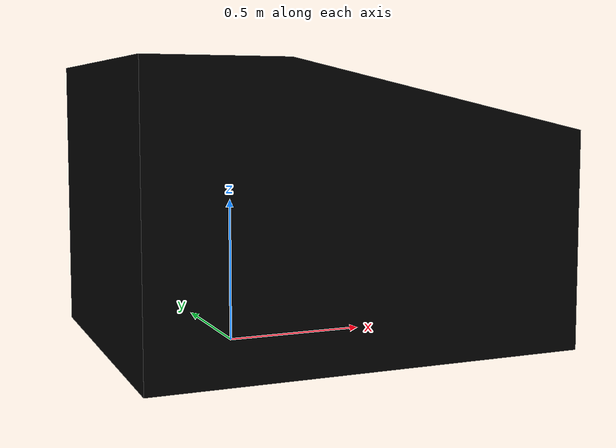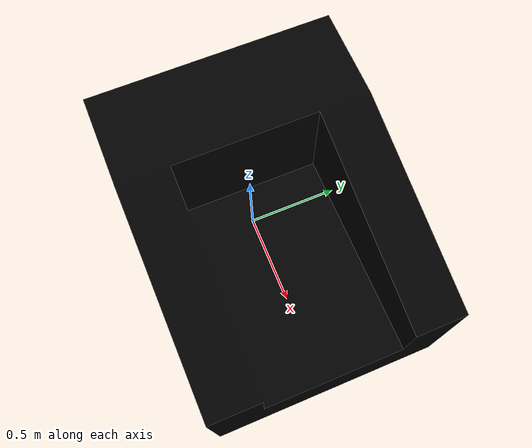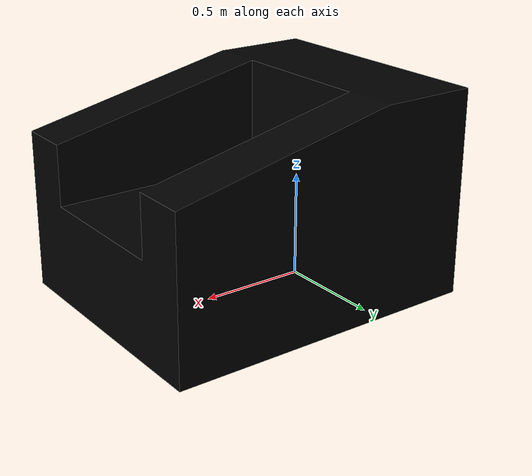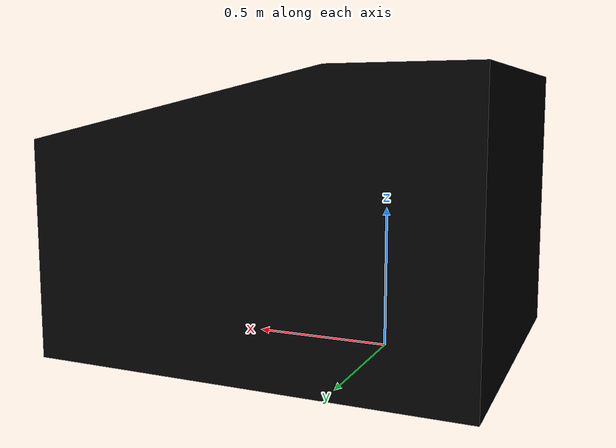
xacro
<?xml version="1.0"?>

<robot xmlns:xacro="http://ros.org/wiki/xacro">

  <material name="white">
    <color rgba="1 1 1 1"/>
  </material>

  <material name="black">
    <color rgba="0 0 0 1"/>
  </material>

  <link name="world_dummy_link"></link>

  <joint name="world_dummy_joint" type="fixed">
    <parent link="world_dummy_link" />
    <child link = "quanjo_body" />
    <origin xyz="0.0 0.0 0.0" rpy="0.0 0.0 0.0" />
  </joint>

  <link name="quanjo_body">
    <visual>
      <geometry>
 	<mesh filename="package://seneka_ugv_description/meshes/Mockup_simplified.dae" scale="0.001 0.001 0.001"/>
      </geometry>
      <geometry>
      	<box size="0.5 0.5 2.0"/>
      </geometry>
      <origin rpy="0 0 1.57" xyz="0 0 0"/>
      <material name="black"/>
    </visual>

    <collision>
      <geometry>
	<mesh filename="package://seneka_ugv_description/meshes/Mockup_simplified.dae" scale="0.001 0.001 0.001"/>
      </geometry>
      <origin rpy="0 0 1.57" xyz="0 0 0"/>
    </collision>

    <inertial>
      <mass value="60" />
      <inertia ixx="1.0" ixy="0.0" ixz="0.0" iyy="1.0" iyz="0.0" izz="1.0"/>
    </inertial>
  </link>

</robot>
